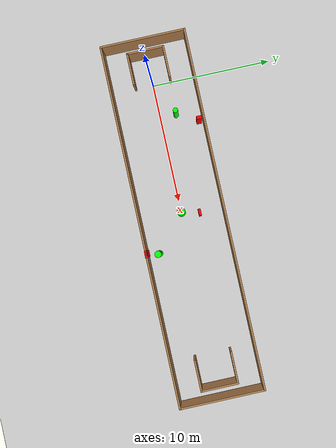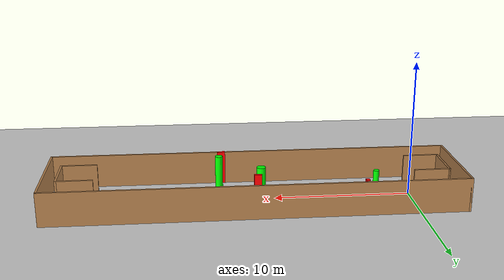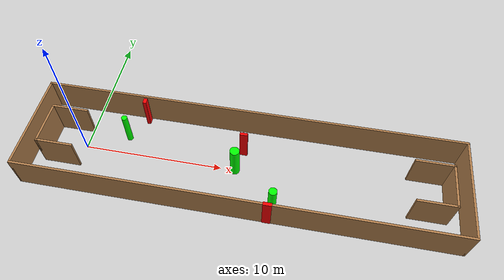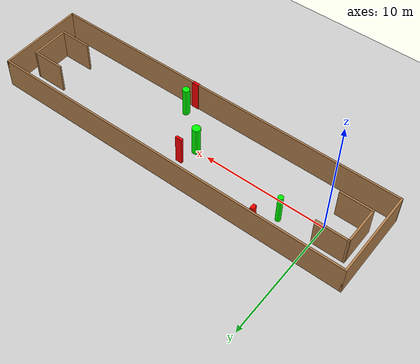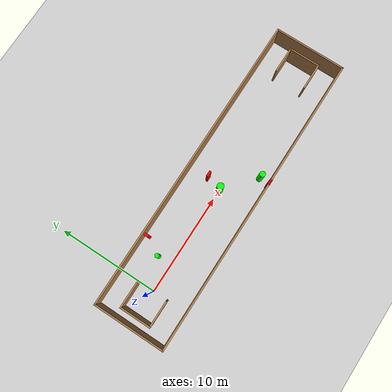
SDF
<sdf version="1.7">
 <world name="default">
  <light name="sun" type="directional">
   <pose>0 0 10 0 -0 0</pose>
   <diffuse>0.8 0.8 0.8 1</diffuse>
   <specular>0.2 0.2 0.2 1</specular>
   <attenuation>
    <range>1000</range>
    <constant>0.9</constant>
    <linear>0.01</linear>
    <quadratic>0.001</quadratic>
   </attenuation>
   <direction>-0.5 0.1 -0.9</direction>
   <spot><inner_angle>0</inner_angle><outer_angle>0</outer_angle><falloff>0</falloff></spot>
  </light>
  <model name="ground_plane">
   <static>1</static>
   <link name="link">
    <collision name="collision">
     <geometry><plane><normal>0 0 1</normal><size>100 100</size></plane></geometry>
     <surface>
      <contact><collide_bitmask>65535</collide_bitmask></contact>
      <friction><ode><mu>100</mu><mu2>50</mu2></ode></friction>
     </surface>
    </collision>
    <visual name="visual">
     <cast_shadows>0</cast_shadows>
     <geometry><plane><normal>0 0 1</normal><size>100 100</size></plane></geometry>
     <material>
      <script><uri>file://media/materials/scripts/gazebo.material</uri><name>Gazebo/Grey</name></script>
     </material>
    </visual>
   </link>
  </model>
  <gravity>0 0 -9.8</gravity>
  <magnetic_field>6e-06 2.3e-05 -4.2e-05</magnetic_field>
  <atmosphere type="adiabatic"/>
  <physics type="ode">
   <max_step_size>0.001</max_step_size>
   <real_time_factor>1</real_time_factor>
   <real_time_update_rate>1000</real_time_update_rate>
  </physics>
  <scene><ambient>0.4 0.4 0.4 1</ambient><background>0.7 0.7 0.7 1</background><shadows>1</shadows></scene>
  <spherical_coordinates>
   <surface_model>EARTH_WGS84</surface_model>
   <latitude_deg>0</latitude_deg>
   <longitude_deg>0</longitude_deg>
   <elevation>0</elevation>
   <heading_deg>0</heading_deg>
  </spherical_coordinates>
  <model name="my_base_walls">
   <link name="Wall_0">
    <collision name="Wall_0_Collision">
     <geometry><box><size>7.15 0.15 2.5</size></box></geometry>
     <pose>0 0 1.25 0 -0 0</pose>
    </collision>
    <visual name="Wall_0_Visual">
     <pose>0 0 1.25 0 -0 0</pose>
     <geometry><box><size>7.15 0.15 2.5</size></box></geometry>
     <material>
      <script><uri>file://media/materials/scripts/gazebo.material</uri><name>Gazebo/Wood</name></script>
      <ambient>1 1 1 1</ambient>
     </material>
     <meta><layer>0</layer></meta>
    </visual>
    <pose>-15 0 0 0 -0 1.5708</pose>
   </link>
   <link name="Wall_10">
    <collision name="Wall_10_Collision">
     <geometry><box><size>2.65 0.15 2.5</size></box></geometry>
     <pose>0 0 1.25 0 -0 0</pose>
    </collision>
    <visual name="Wall_10_Visual">
     <pose>0 0 1.25 0 -0 0</pose>
     <geometry><box><size>2.65 0.15 2.5</size></box></geometry>
     <material>
      <script><uri>file://media/materials/scripts/gazebo.material</uri><name>Gazebo/Wood</name></script>
      <ambient>1 1 1 1</ambient>
     </material>
     <meta><layer>0</layer></meta>
    </visual>
    <pose>-12.75 -1.5 0 0 -0 0</pose>
   </link>
   <link name="Wall_12">
    <collision name="Wall_12_Collision">
     <geometry><box><size>2.65 0.15 2.5</size></box></geometry>
     <pose>0 0 1.25 0 -0 0</pose>
    </collision>
    <visual name="Wall_12_Visual">
     <pose>0 0 1.25 0 -0 0</pose>
     <geometry><box><size>2.65 0.15 2.5</size></box></geometry>
     <material>
      <script><uri>file://media/materials/scripts/gazebo.material</uri><name>Gazebo/Wood</name></script>
      <ambient>1 1 1 1</ambient>
     </material>
     <meta><layer>0</layer></meta>
    </visual>
    <pose>-12.75 1.5 0 0 -0 0</pose>
   </link>
   <link name="Wall_14">
    <collision name="Wall_14_Collision">
     <geometry><box><size>3.15 0.15 2.5</size></box></geometry>
     <pose>0 0 1.25 0 -0 0</pose>
    </collision>
    <visual name="Wall_14_Visual">
     <pose>0 0 1.25 0 -0 0</pose>
     <geometry><box><size>3.15 0.15 2.5</size></box></geometry>
     <material>
      <script><uri>file://media/materials/scripts/gazebo.material</uri><name>Gazebo/Wood</name></script>
      <ambient>1 1 1 1</ambient>
     </material>
     <meta><layer>0</layer></meta>
    </visual>
    <pose>14 0 0 0 -0 -1.5708</pose>
   </link>
   <link name="Wall_15">
    <collision name="Wall_15_Collision">
     <geometry><box><size>2.65 0.15 2.5</size></box></geometry>
     <pose>0 0 1.25 0 -0 0</pose>
    </collision>
    <visual name="Wall_15_Visual">
     <pose>0 0 1.25 0 -0 0</pose>
     <geometry><box><size>2.65 0.15 2.5</size></box></geometry>
     <material>
      <script><uri>file://media/materials/scripts/gazebo.material</uri><name>Gazebo/Wood</name></script>
      <ambient>1 1 1 1</ambient>
     </material>
     <meta><layer>0</layer></meta>
    </visual>
    <pose>12.75 -1.5 0 0 -0 3.14159</pose>
   </link>
   <link name="Wall_17">
    <collision name="Wall_17_Collision">
     <geometry><box><size>2.65 0.15 2.5</size></box></geometry>
     <pose>0 0 1.25 0 -0 0</pose>
    </collision>
    <visual name="Wall_17_Visual">
     <pose>0 0 1.25 0 -0 0</pose>
     <geometry><box><size>2.65 0.15 2.5</size></box></geometry>
     <material>
      <script><uri>file://media/materials/scripts/gazebo.material</uri><name>Gazebo/Wood</name></script>
      <ambient>1 1 1 1</ambient>
     </material>
     <meta><layer>0</layer></meta>
    </visual>
    <pose>12.75 1.5 0 0 -0 3.14159</pose>
   </link>
   <link name="Wall_2">
    <collision name="Wall_2_Collision">
     <geometry><box><size>30.15 0.15 2.5</size></box></geometry>
     <pose>0 0 1.25 0 -0 0</pose>
    </collision>
    <visual name="Wall_2_Visual">
     <pose>0 0 1.25 0 -0 0</pose>
     <geometry><box><size>30.15 0.15 2.5</size></box></geometry>
     <material>
      <script><uri>file://media/materials/scripts/gazebo.material</uri><name>Gazebo/Wood</name></script>
      <ambient>1 1 1 1</ambient>
     </material>
     <meta><layer>0</layer></meta>
    </visual>
    <pose>-0 -3.5 0 0 -0 0</pose>
   </link>
   <link name="Wall_4">
    <collision name="Wall_4_Collision">
     <geometry><box><size>30.15 0.15 2.5</size></box></geometry>
     <pose>0 0 1.25 0 -0 0</pose>
    </collision>
    <visual name="Wall_4_Visual">
     <pose>0 0 1.25 0 -0 0</pose>
     <geometry><box><size>30.15 0.15 2.5</size></box></geometry>
     <material>
      <script><uri>file://media/materials/scripts/gazebo.material</uri><name>Gazebo/Wood</name></script>
      <ambient>1 1 1 1</ambient>
     </material>
     <meta><layer>0</layer></meta>
    </visual>
    <pose>-0 3.5 0 0 -0 0</pose>
   </link>
   <link name="Wall_6">
    <collision name="Wall_6_Collision">
     <geometry><box><size>7.15 0.15 2.5</size></box></geometry>
     <pose>0 0 1.25 0 -0 0</pose>
    </collision>
    <visual name="Wall_6_Visual">
     <pose>0 0 1.25 0 -0 0</pose>
     <geometry><box><size>7.15 0.15 2.5</size></box></geometry>
     <material>
      <script><uri>file://media/materials/scripts/gazebo.material</uri><name>Gazebo/Wood</name></script>
      <ambient>1 1 1 1</ambient>
     </material>
     <meta><layer>0</layer></meta>
    </visual>
    <pose>15 0 0 0 -0 -1.5708</pose>
   </link>
   <link name="Wall_9">
    <collision name="Wall_9_Collision">
     <geometry><box><size>3.15 0.15 2.5</size></box></geometry>
     <pose>0 0 1.25 0 -0 0</pose>
    </collision>
    <visual name="Wall_9_Visual">
     <pose>0 0 1.25 0 -0 0</pose>
     <geometry><box><size>3.15 0.15 2.5</size></box></geometry>
     <material>
      <script><uri>file://media/materials/scripts/gazebo.material</uri><name>Gazebo/Wood</name></script>
      <ambient>1 1 1 1</ambient>
     </material>
     <meta><layer>0</layer></meta>
    </visual>
    <pose>-14 0 0 0 -0 -1.5708</pose>
   </link>
   <static>1</static>
   <pose>11.5 0 0 0 -0 0</pose>
  </model>
  <model name="cylinder1">
   <static>1</static>
   <link name="link">
    <inertial>
     <mass>1</mass>
     <inertia><ixx>0.5</ixx><ixy>0</ixy><ixz>0</ixz><iyy>0.5</iyy><iyz>0</iyz><izz>1</izz></inertia>
    </inertial>
    <collision name="collision">
     <geometry><cylinder><radius>0.20608535832650354</radius><length>2.5</length></cylinder></geometry>
    </collision>
    <visual name="visual">
     <geometry><cylinder><radius>0.20608535832650354</radius><length>2.5</length></cylinder></geometry>
     <material>
      <ambient>0 1 0 1</ambient>
      <diffuse>0 1 0 1</diffuse>
      <specular>0.1 0.1 0.1 1</specular>
      <emissive>0 0 0 0</emissive>
     </material>
    </visual>
   </link>
   <pose>2.846297059510672 1.3490442439891535 1.25 0 0 0</pose>
  </model>
  <model name="cylinder2">
   <static>1</static>
   <link name="link">
    <inertial>
     <mass>1</mass>
     <inertia><ixx>0.5</ixx><ixy>0</ixy><ixz>0</ixz><iyy>0.5</iyy><iyz>0</iyz><izz>1</izz></inertia>
    </inertial>
    <collision name="collision">
     <geometry><cylinder><radius>0.27987750085795227</radius><length>2.5</length></cylinder></geometry>
    </collision>
    <visual name="visual">
     <geometry><cylinder><radius>0.27987750085795227</radius><length>2.5</length></cylinder></geometry>
     <material>
      <ambient>0 1 0 1</ambient>
      <diffuse>0 1 0 1</diffuse>
      <specular>0.1 0.1 0.1 1</specular>
      <emissive>0 0 0 0</emissive>
     </material>
    </visual>
   </link>
   <pose>13.98325816527376 -2.5474636606692025 1.25 0 0 0</pose>
  </model>
  <model name="cylinder3">
   <static>1</static>
   <link name="link">
    <inertial>
     <mass>1</mass>
     <inertia><ixx>0.5</ixx><ixy>0</ixy><ixz>0</ixz><iyy>0.5</iyy><iyz>0</iyz><izz>1</izz></inertia>
    </inertial>
    <collision name="collision">
     <geometry><cylinder><radius>0.331852486760281</radius><length>2.5</length></cylinder></geometry>
    </collision>
    <visual name="visual">
     <geometry><cylinder><radius>0.331852486760281</radius><length>2.5</length></cylinder></geometry>
     <material>
      <ambient>0 1 0 1</ambient>
      <diffuse>0 1 0 1</diffuse>
      <specular>0.1 0.1 0.1 1</specular>
      <emissive>0 0 0 0</emissive>
     </material>
    </visual>
   </link>
   <pose>11.011704536356964 0.011864535974784651 1.25 0 0 0</pose>
  </model>
  <model name="box1">
   <static>1</static>
   <link name="link">
    <inertial>
     <mass>1</mass>
     <inertia><ixx>0.083</ixx><ixy>0</ixy><ixz>0</ixz><iyy>0.083</iyy><iyz>0</iyz><izz>0.083</izz></inertia>
    </inertial>
    <collision name="collision">
     <geometry><box><size>0.2568165983413682 0.4170049488981572 2.5</size></box></geometry>
    </collision>
    <visual name="visual">
     <geometry><box><size>0.2568165983413682 0.4170049488981572 2.5</size></box></geometry>
     <material>
      <ambient>1 0 0 1</ambient>
      <diffuse>1 0 0 1</diffuse>
      <specular>0.1 0.1 0.1 1</specular>
      <emissive>0 0 0 0</emissive>
     </material>
    </visual>
    <sensor name="my_contact" type="contact">
     <contact><collision>box_collision</collision><topic>__default_topic__</topic></contact>
    </sensor>
   </link>
   <pose>3.832050675576557 3.100462469461166 1.25 0 0 0</pose>
  </model>
  <model name="box2">
   <static>1</static>
   <link name="link">
    <inertial>
     <mass>1</mass>
     <inertia><ixx>0.083</ixx><ixy>0</ixy><ixz>0</ixz><iyy>0.083</iyy><iyz>0</iyz><izz>0.083</izz></inertia>
    </inertial>
    <collision name="collision">
     <geometry><box><size>0.5483932022871376 0.2048749606065382 2.5</size></box></geometry>
    </collision>
    <visual name="visual">
     <geometry><box><size>0.5483932022871376 0.2048749606065382 2.5</size></box></geometry>
     <material>
      <ambient>1 0 0 1</ambient>
      <diffuse>1 0 0 1</diffuse>
      <specular>0.1 0.1 0.1 1</specular>
      <emissive>0 0 0 0</emissive>
     </material>
    </visual>
    <sensor name="my_contact" type="contact">
     <contact><collision>box_collision</collision><topic>__default_topic__</topic></contact>
    </sensor>
   </link>
   <pose>11.379430864271546 1.4903939884768773 1.25 0 0 0</pose>
  </model>
  <model name="box3">
   <static>1</static>
   <link name="link">
    <inertial>
     <mass>1</mass>
     <inertia><ixx>0.083</ixx><ixy>0</ixy><ixz>0</ixz><iyy>0.083</iyy><iyz>0</iyz><izz>0.083</izz></inertia>
    </inertial>
    <collision name="collision">
     <geometry><box><size>0.5941724463413247 0.23182074501262984 2.5</size></box></geometry>
    </collision>
    <visual name="visual">
     <geometry><box><size>0.5941724463413247 0.23182074501262984 2.5</size></box></geometry>
     <material>
      <ambient>1 0 0 1</ambient>
      <diffuse>1 0 0 1</diffuse>
      <specular>0.1 0.1 0.1 1</specular>
      <emissive>0 0 0 0</emissive>
     </material>
    </visual>
    <sensor name="my_contact" type="contact">
     <contact><collision>box_collision</collision><topic>__default_topic__</topic></contact>
    </sensor>
   </link>
   <pose>13.777776316309863 -3.4899336972355126 1.25 0 0 0</pose>
  </model>
 </world>
</sdf>
